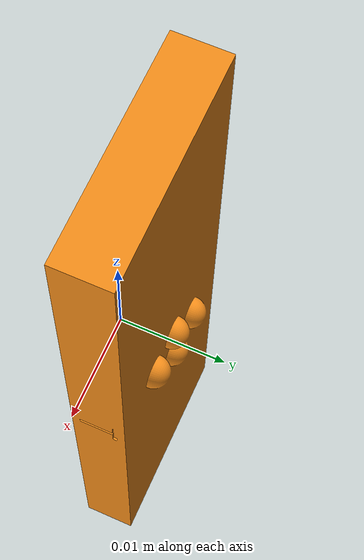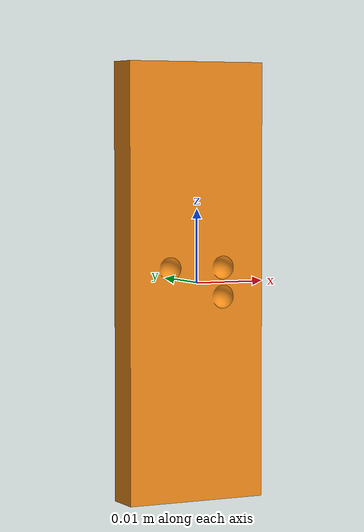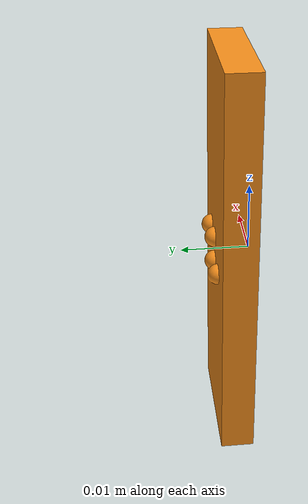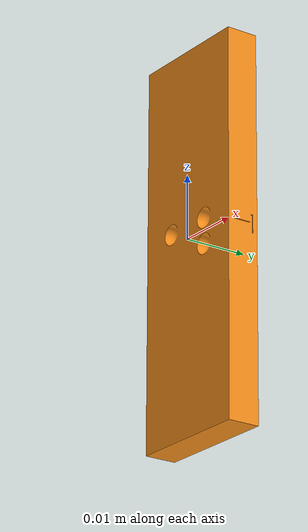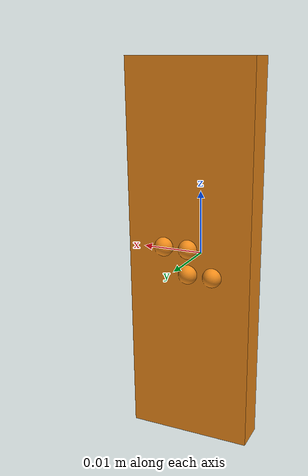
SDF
<?xml version="1.0"?>

<sdf version="1.5">
  <model name='T'>
    <link name='T_root_link'>
      <pose>0 0 0 0 0 0</pose>
      <inertial>
	<!-- CoM -->
	<pose>0.0 0.0 0.0</pose>
        <mass>0.2</mass>
        <inertia>
          <ixx>0.001354763904</ixx>
          <ixy>0.0</ixy>
          <ixz>0.0</ixz>
          <iyy>0.001354764032</iyy>
          <iyz>0.0</iyz>
          <izz>0.002700175872</izz>
        </inertia>
      </inertial>
      <collision name='T_collision'>
        <geometry>
          <mesh><uri>model://br_T/T.stl</uri></mesh>
        </geometry>
	<surface>
          <friction>
            <ode>
              <mu>0.1</mu>
              <mu2>0.1</mu2>
            </ode>
          </friction>
	</surface>
      </collision>
      <visual name='T_visual'>
        <geometry>
          <mesh><uri>model://br_T/T.dae</uri></mesh>
        </geometry>
        <material>
	  <script>
	    <uri>file://media/materials/scripts/gazebo.material</uri>
	    <name>Gazebo/Orange</name>
	  </script>
        </material>
      </visual>
    </link>
  </model>
</sdf>
